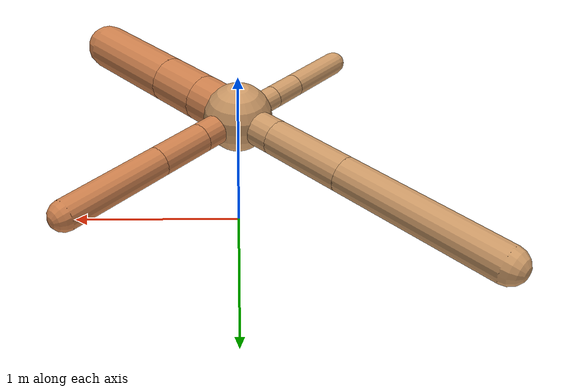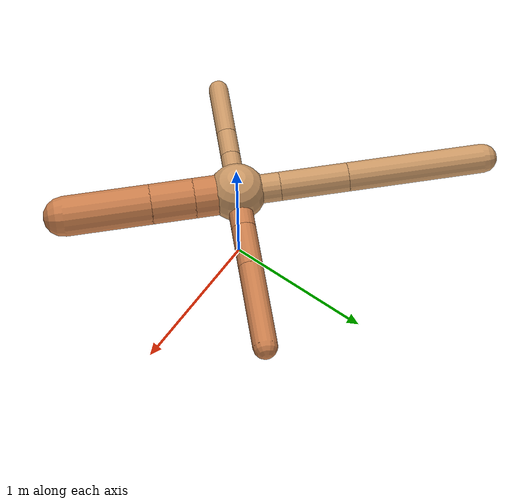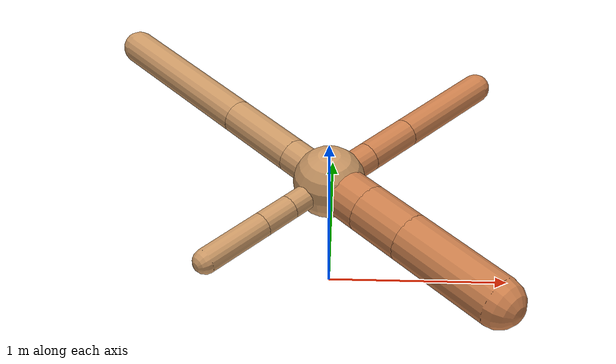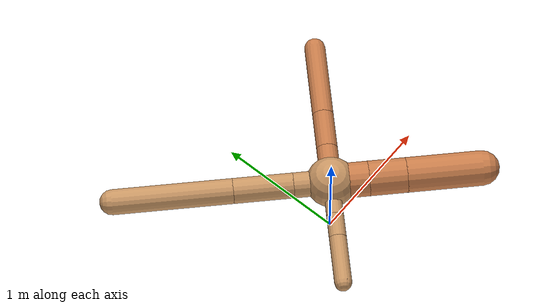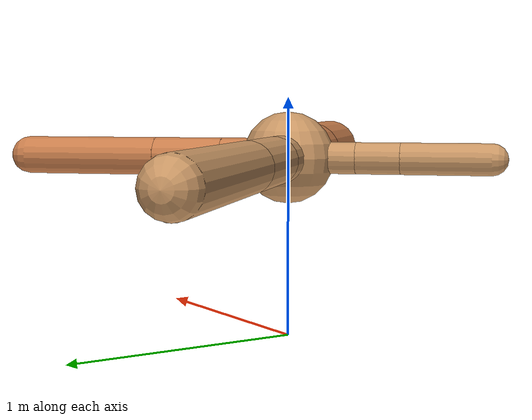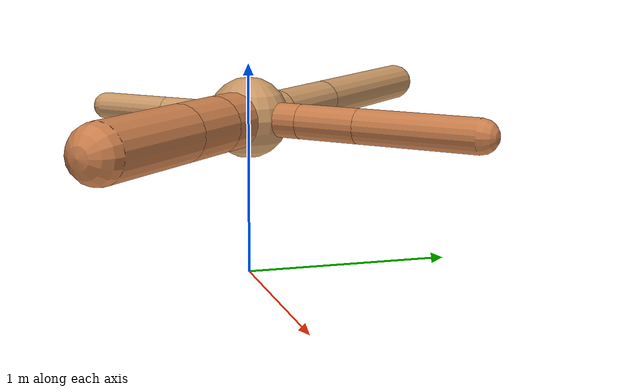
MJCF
<?xml version="1.0" ?>
<mujoco model="ant">

	<compiler angle="degree" coordinate="local" inertiafromgeom="true"/>

	<option integrator="RK4" timestep="0.01"/>

	<custom>

		<numeric data="0.0 0.0 0.55 1.0 0.0 0.0 0.0 0.0 1.0 0.0 -1.0 0.0 -1.0 0.0 1.0" name="init_qpos"/>

	</custom>

	<default>

		<joint armature="1" damping="1" limited="true"/>

		<geom conaffinity="0" condim="3" density="5.0" friction="1.5 0.1 0.1" margin="0.01" rgba="0.8 0.6 0.4 1"/>

	</default>

	<worldbody>

		<body name="torso" pos="0 0 0.75">

			<geom name="torso_geom" pos="0 0 0" size="0.1903945892681965" type="sphere"/>

			<!--joint armature="0" damping="0" limited="false" margin="0.01" name="root" pos="0 0 0" type="free"/-->

			<body name="front_left_leg" pos="0 0 0">

				<geom fromto="0 0 0 0.2 0.2 0" name="aux_1_geom" size="0.08055697753812996" type="capsule" rgba=".8 .5 .3 1"/>

				<body name="aux_1" pos="0.2 0.2 0">

					<joint axis="0 0 1" name="hip_1" pos="0.0 0.0 0.0" range="-40 40" type="hinge"/>

					<geom fromto="0 0 0 0.20532109480166813 0.20532109480166813 0" name="left_leg_geom" size="0.08055697753812996" type="capsule" rgba=".8 .5 .3 1"/>

					<body pos="0.20532109480166813 0.20532109480166813 0" name="front_left_foot">

						<joint axis="-1 1 0" name="ankle_1" pos="0.0 0.0 0.0" range="30 100" type="hinge"/>

						<geom fromto="0 0 0 0.41064218960333626 0.41064218960333626 0" name="left_ankle_geom" size="0.08055697753812996" type="capsule" rgba=".8 .5 .3 1"/>

					</body>

				</body>

			</body>

			<body name="front_right_leg" pos="0 0 0">

				<geom fromto="0 0 0 -0.2 0.2 0" name="aux_2_geom" size="0.09576270569045299" type="capsule"/>

				<body name="aux_2" pos="-0.2 0.2 0">

					<joint axis="0 0 1" name="hip_2" pos="0.0 0.0 0.0" range="-40 40" type="hinge"/>

					<geom fromto="0 0 0 -0.3214294732532853 0.3214294732532853 0" name="right_leg_geom" size="0.09576270569045299" type="capsule"/>

					<body pos="-0.3214294732532853 0.3214294732532853 0" name="front_right_foot">

						<joint axis="1 1 0" name="ankle_2" pos="0.0 0.0 0.0" range="-100 -30" type="hinge"/>

						<geom fromto="0 0 0 -0.6428589465065706 0.6428589465065706 0" name="right_ankle_geom" size="0.09576270569045299" type="capsule"/>

					</body>

				</body>

			</body>

			<body name="left_back_leg" pos="0 0 0">

				<geom fromto="0 0 0 -0.2 -0.2 0" name="aux_3_geom" size="0.06560924214337957" type="capsule"/>

				<body name="aux_3" pos="-0.2 -0.2 0">

					<joint axis="0 0 1" name="hip_3" pos="0.0 0.0 0.0" range="-40 40" type="hinge"/>

					<geom fromto="0 0 0 -0.12858951982194114 -0.12858951982194114 0" name="back_leg_geom" size="0.06560924214337957" type="capsule"/>

					<body pos="-0.12858951982194114 -0.12858951982194114 0" name="left_back_foot">

						<joint axis="-1 1 0" name="ankle_3" pos="0.0 0.0 0.0" range="-100 -30" type="hinge"/>

						<geom fromto="0 0 0 -0.2571790396438823 -0.2571790396438823 0" name="third_ankle_geom" size="0.06560924214337957" type="capsule"/>

					</body>

				</body>

			</body>

			<body name="right_back_leg" pos="0 0 0">

				<geom fromto="0 0 0 0.2 -0.2 0" name="aux_4_geom" size="0.13274013689355083" type="capsule" rgba=".8 .5 .3 1"/>

				<body name="aux_4" pos="0.2 -0.2 0">

					<joint axis="0 0 1" name="hip_4" pos="0.0 0.0 0.0" range="-40 40" type="hinge"/>

					<geom fromto="0 0 0 0.2031500439021739 -0.2031500439021739 0" name="rightback_leg_geom" size="0.13274013689355083" type="capsule" rgba=".8 .5 .3 1"/>

					<body pos="0.2031500439021739 -0.2031500439021739 0" name="right_back_foot">

						<joint axis="1 1 0" name="ankle_4" pos="0.0 0.0 0.0" range="30 100" type="hinge"/>

						<geom fromto="0 0 0 0.4063000878043478 -0.4063000878043478 0" name="fourth_ankle_geom" size="0.13274013689355083" type="capsule" rgba=".8 .5 .3 1"/>

					</body>

				</body>

			</body>

		</body>

	</worldbody>

	<actuator>

		<motor ctrllimited="true" ctrlrange="-1.0 1.0" joint="hip_4" gear="150"/>

		<motor ctrllimited="true" ctrlrange="-1.0 1.0" joint="ankle_4" gear="150"/>

		<motor ctrllimited="true" ctrlrange="-1.0 1.0" joint="hip_1" gear="150"/>

		<motor ctrllimited="true" ctrlrange="-1.0 1.0" joint="ankle_1" gear="150"/>

		<motor ctrllimited="true" ctrlrange="-1.0 1.0" joint="hip_2" gear="150"/>

		<motor ctrllimited="true" ctrlrange="-1.0 1.0" joint="ankle_2" gear="150"/>

		<motor ctrllimited="true" ctrlrange="-1.0 1.0" joint="hip_3" gear="150"/>

		<motor ctrllimited="true" ctrlrange="-1.0 1.0" joint="ankle_3" gear="150"/>

	</actuator>

</mujoco>
